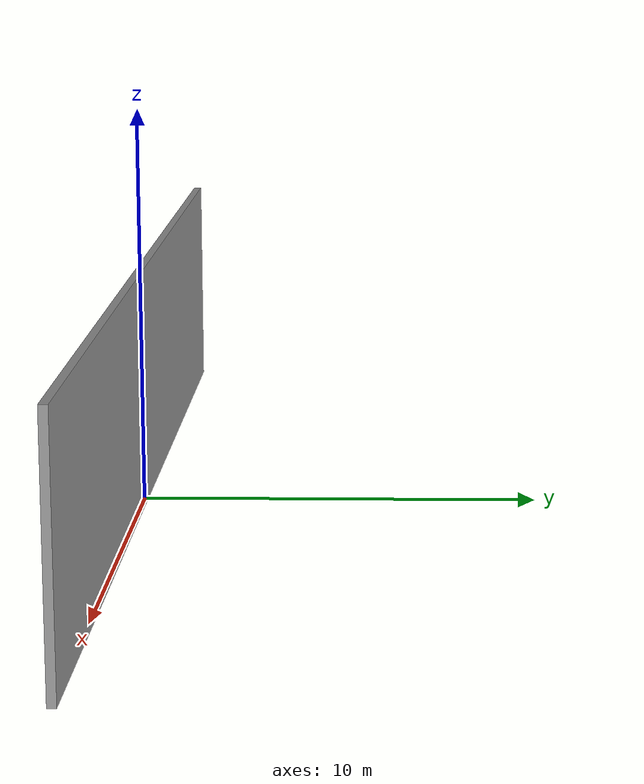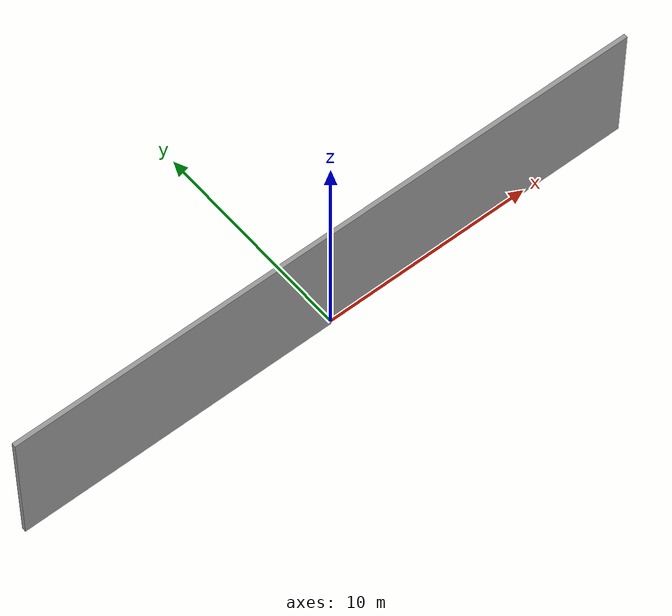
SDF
<?xml version="1.0" ?>
<sdf version="1.5">
  <model name="modified_grey_wall">
    <static>true</static>
    <link name="link">
      <pose>0 0 3 0 0 0</pose>
      <collision name="collision">
        <geometry>
          <box>
            <size>30.0 0.2 6.0</size>
          </box>
        </geometry>
      </collision>
      <visual name="visual">
        <cast_shadows>false</cast_shadows>
        <geometry>
          <box>
            <size>30.0 0.2 6.0</size>
          </box>
        </geometry>
        <material>
          <script>
            <uri>model://modified_grey_wall/materials/scripts</uri>
            <uri>model://modified_grey_wall/materials/textures</uri>
            <name>vrc/grey_wall</name>
          </script>
        </material>
      </visual>
    </link>
  </model>
</sdf>
